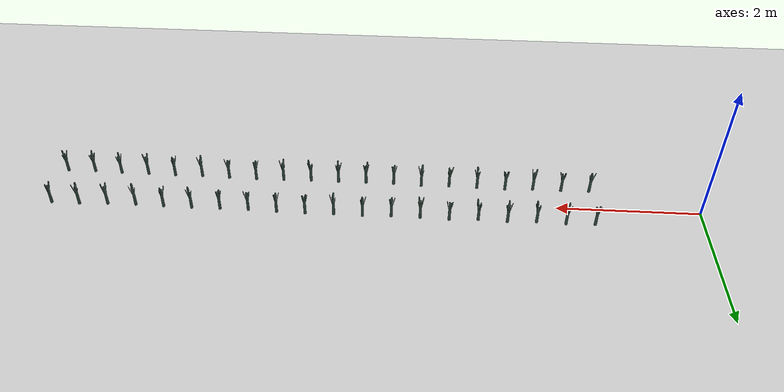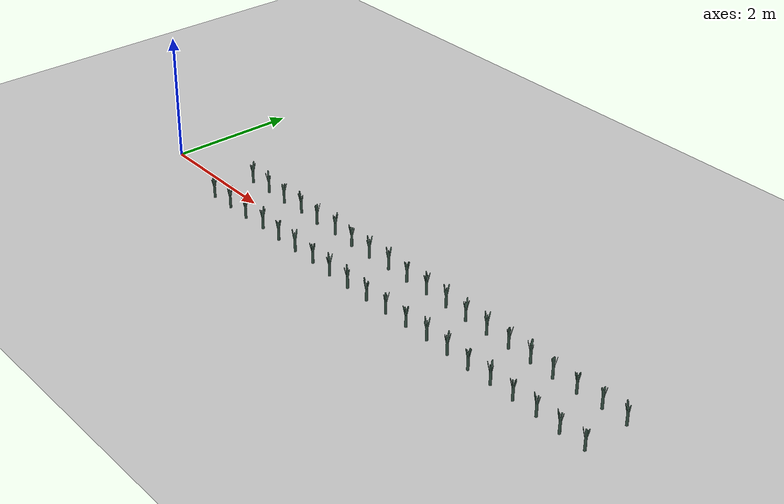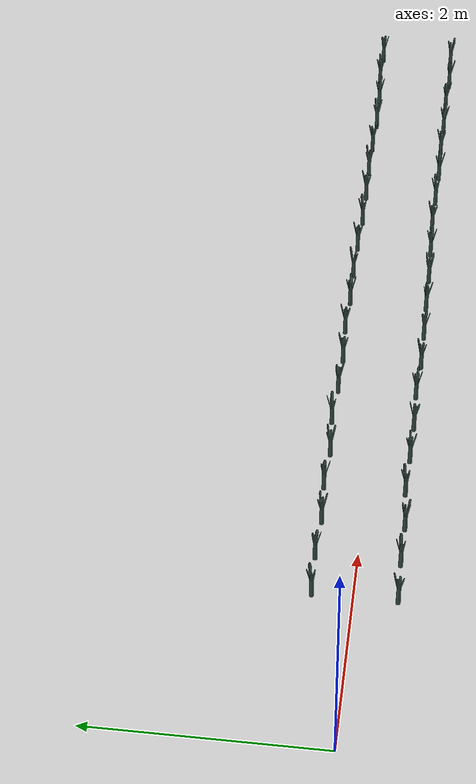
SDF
<sdf version="1.6">
 <world name="default">
  <light name="sun" type="directional">
   <pose>0 0 10 0 -0 0</pose>
   <diffuse>0.5 0.5 0.5 1</diffuse>
   <specular>0.1 0.1 0.1 1</specular>
   <attenuation>
    <range>1000</range>
    <constant>0.9</constant>
    <linear>0.01</linear>
    <quadratic>0.001</quadratic>
   </attenuation>
   <direction>0.9 0.5 -1</direction>
  </light>
  <scene><background>130 200 255 1</background><ambient>130 140 140 1</ambient></scene>
  <include><uri>model://dirt_plane</uri></include>
  <include>
   <uri>model://Leek</uri>
   <pose>1.500000 0.337492 0.15 0 0 -112.568285</pose>
   <static>0</static>
  </include>
  <include><uri>model://Leek</uri><pose>1.900000 0.349603 0.15 0 0 -3.568748</pose><static>0</static></include>
  <include>
   <uri>model://Leek</uri>
   <pose>2.300000 0.336604 0.15 0 0 -120.562468</pose>
   <static>0</static>
  </include>
  <include><uri>model://Leek</uri><pose>2.700000 0.358012 0.15 0 0 72.104202</pose><static>0</static></include>
  <include><uri>model://Leek</uri><pose>3.100000 0.342916 0.15 0 0 -63.755295</pose><static>0</static></include>
  <include><uri>model://Leek</uri><pose>3.500000 0.368171 0.15 0 0 163.534560</pose><static>0</static></include>
  <include><uri>model://Leek</uri><pose>3.900000 0.351100 0.15 0 0 9.903439</pose><static>0</static></include>
  <include><uri>model://Leek</uri><pose>4.300000 0.345961 0.15 0 0 -36.349232</pose><static>0</static></include>
  <include><uri>model://Leek</uri><pose>4.700000 0.363434 0.15 0 0 120.908387</pose><static>0</static></include>
  <include><uri>model://Leek</uri><pose>5.100000 0.354014 0.15 0 0 36.128637</pose><static>0</static></include>
  <include><uri>model://Leek</uri><pose>5.500000 0.360579 0.15 0 0 95.207774</pose><static>0</static></include>
  <include><uri>model://Leek</uri><pose>5.900000 0.355752 0.15 0 0 51.768591</pose><static>0</static></include>
  <include><uri>model://Leek</uri><pose>6.300000 0.343063 0.15 0 0 -62.431162</pose><static>0</static></include>
  <include><uri>model://Leek</uri><pose>6.700000 0.343168 0.15 0 0 -61.486452</pose><static>0</static></include>
  <include><uri>model://Leek</uri><pose>7.100000 0.349895 0.15 0 0 -0.949206</pose><static>0</static></include>
  <include><uri>model://Leek</uri><pose>7.500000 0.346049 0.15 0 0 -35.560559</pose><static>0</static></include>
  <include>
   <uri>model://Leek</uri>
   <pose>7.900000 0.335914 0.15 0 0 -126.772770</pose>
   <static>0</static>
  </include>
  <include><uri>model://Leek</uri><pose>8.300000 0.343511 0.15 0 0 -58.397348</pose><static>0</static></include>
  <include><uri>model://Leek</uri><pose>8.700000 0.366602 0.15 0 0 149.421515</pose><static>0</static></include>
  <include><uri>model://Leek</uri><pose>9.100000 0.362171 0.15 0 0 109.537067</pose><static>0</static></include>
  <include>
   <uri>model://Leek</uri>
   <pose>1.500000 -0.368704 0.15 0 0 -168.332397</pose>
   <static>0</static>
  </include>
  <include>
   <uri>model://Leek</uri>
   <pose>1.900000 -0.359046 0.15 0 0 -81.410611</pose>
   <static>0</static>
  </include>
  <include>
   <uri>model://Leek</uri>
   <pose>2.300000 -0.364222 0.15 0 0 -128.001107</pose>
   <static>0</static>
  </include>
  <include><uri>model://Leek</uri><pose>2.700000 -0.339470 0.15 0 0 94.765872</pose><static>0</static></include>
  <include><uri>model://Leek</uri><pose>3.100000 -0.349459 0.15 0 0 4.867738</pose><static>0</static></include>
  <include>
   <uri>model://Leek</uri>
   <pose>3.500000 -0.355393 0.15 0 0 -48.537108</pose>
   <static>0</static>
  </include>
  <include><uri>model://Leek</uri><pose>3.900000 -0.346009 0.15 0 0 35.915445</pose><static>0</static></include>
  <include>
   <uri>model://Leek</uri>
   <pose>4.300000 -0.364536 0.15 0 0 -130.822401</pose>
   <static>0</static>
  </include>
  <include>
   <uri>model://Leek</uri>
   <pose>4.700000 -0.363662 0.15 0 0 -122.962339</pose>
   <static>0</static>
  </include>
  <include>
   <uri>model://Leek</uri>
   <pose>5.100000 -0.358017 0.15 0 0 -72.154766</pose>
   <static>0</static>
  </include>
  <include>
   <uri>model://Leek</uri>
   <pose>5.500000 -0.357767 0.15 0 0 -69.906883</pose>
   <static>0</static>
  </include>
  <include><uri>model://Leek</uri><pose>5.900000 -0.348798 0.15 0 0 10.813920</pose><static>0</static></include>
  <include>
   <uri>model://Leek</uri>
   <pose>6.300000 -0.338681 0.15 0 0 101.869012</pose>
   <static>0</static>
  </include>
  <include><uri>model://Leek</uri><pose>6.700000 -0.345768 0.15 0 0 38.086440</pose><static>0</static></include>
  <include>
   <uri>model://Leek</uri>
   <pose>7.100000 -0.355758 0.15 0 0 -51.817965</pose>
   <static>0</static>
  </include>
  <include><uri>model://Leek</uri><pose>7.500000 -0.349077 0.15 0 0 8.308068</pose><static>0</static></include>
  <include>
   <uri>model://Leek</uri>
   <pose>7.900000 -0.355103 0.15 0 0 -45.926851</pose>
   <static>0</static>
  </include>
  <include>
   <uri>model://Leek</uri>
   <pose>8.300000 -0.352418 0.15 0 0 -21.758153</pose>
   <static>0</static>
  </include>
  <include>
   <uri>model://Leek</uri>
   <pose>8.700000 -0.367079 0.15 0 0 -153.710584</pose>
   <static>0</static>
  </include>
  <include>
   <uri>model://Leek</uri>
   <pose>9.100000 -0.357935 0.15 0 0 -71.417653</pose>
   <static>0</static>
  </include>
 </world>
</sdf>

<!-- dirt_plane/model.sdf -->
<sdf version="1.4">
<model name="dirt_plane">
  <static>true</static>
    <link name="link">
      <collision name="collision">
        <geometry>
          <plane>
            <normal>0 0 1</normal>
            <size>100 100</size>
          </plane>
        </geometry>
        <surface>
          <friction>
            <ode>
              <mu>0.99</mu>
              <mu2>0.99</mu2>
            </ode>
          </friction>
        </surface>
      </collision>
      <visual name="visual">
        <cast_shadows>false</cast_shadows>
        <geometry>
          <plane>
            <normal>0 0 1</normal>
            <size>100 100</size>
          </plane>
        </geometry>
        <material>
          <script>
            <uri>model://ground_plane/materials/scripts/my_ground_plane.material</uri>
            <uri>model://ground_plane/materials/textures</uri>
            <name>my_ground_plane/Dirt</name>
          </script>
        </material>
      </visual>
    </link>
  </model>
</sdf>

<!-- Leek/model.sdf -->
<sdf version='1.6'>
  <model name='Leek'>
    <link name='link'>
      <pose frame=''>0 0 0 0 -0 0</pose>
      <inertial>
        <mass>1</mass>
        <inertia>
          <ixx>0.145833</ixx>
          <ixy>0</ixy>
          <ixz>0</ixz>
          <iyy>0.145833</iyy>
          <iyz>0</iyz>
          <izz>0.125</izz>
        </inertia>
        <pose frame=''>0 0 0 0 -0 0</pose>
      </inertial>
      <self_collide>0</self_collide>
      <kinematic>0</kinematic>
      <gravity>1</gravity>
      <visual name='visual'>
        <geometry>
          <mesh>
            <uri>model://Leek/Poireau.dae</uri>
            <scale>1 1 1</scale>
          </mesh>
        </geometry>
        <material>
          <script>
            <name>Gazebo/Grey</name>
            <uri>file://media/materials/scripts/gazebo.material</uri>
          </script>
          <ambient>0.3 0.6 0.5 0</ambient>
          <diffuse>0.2 0.3 0.25 0</diffuse>
          <specular>0 0 0 1</specular>
          <emissive>0 0 0 1</emissive>
          <shader type='vertex'>
            <normal_map>__default__</normal_map>
          </shader>
        </material>
        <pose frame=''>0 0 -0.08 0 -0 0</pose>
        <cast_shadows>1</cast_shadows>
        <transparency>0</transparency>
      </visual>
      <collision name='collision'>
        <laser_retro>0</laser_retro>
        <max_contacts>10</max_contacts>
        <pose frame=''>0 0 0 0 -0 0</pose>
        <geometry>
          <cylinder>
            <radius>0.02</radius>
            <length>0.25</length>
          </cylinder>
        </geometry>
        <surface>
          <friction>
            <ode>
              <mu>1</mu>
              <mu2>1</mu2>
              <fdir1>0 0 0</fdir1>
              <slip1>0</slip1>
              <slip2>0</slip2>
            </ode>
            <torsional>
              <coefficient>1</coefficient>
              <patch_radius>0</patch_radius>
              <surface_radius>0</surface_radius>
              <use_patch_radius>1</use_patch_radius>
              <ode>
                <slip>0</slip>
              </ode>
            </torsional>
          </friction>
          <bounce>
            <restitution_coefficient>0</restitution_coefficient>
            <threshold>1e+06</threshold>
          </bounce>
          <contact>
            <collide_without_contact>0</collide_without_contact>
            <collide_without_contact_bitmask>1</collide_without_contact_bitmask>
            <collide_bitmask>1</collide_bitmask>
            <ode>
              <soft_cfm>0</soft_cfm>
              <soft_erp>0.2</soft_erp>
              <kp>1e+13</kp>
              <kd>1</kd>
              <max_vel>0.01</max_vel>
              <min_depth>0</min_depth>
            </ode>
            <bullet>
              <split_impulse>1</split_impulse>
              <split_impulse_penetration_threshold>-0.01</split_impulse_penetration_threshold>
              <soft_cfm>0</soft_cfm>
              <soft_erp>0.2</soft_erp>
              <kp>1e+13</kp>
              <kd>1</kd>
            </bullet>
          </contact>
        </surface>
      </collision>
    </link>
    <static>0</static>
    <allow_auto_disable>1</allow_auto_disable>
  </model>
</sdf>
